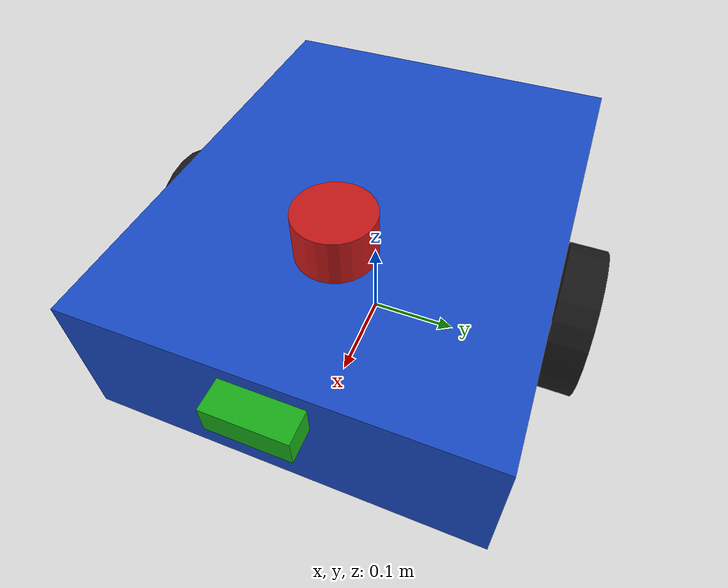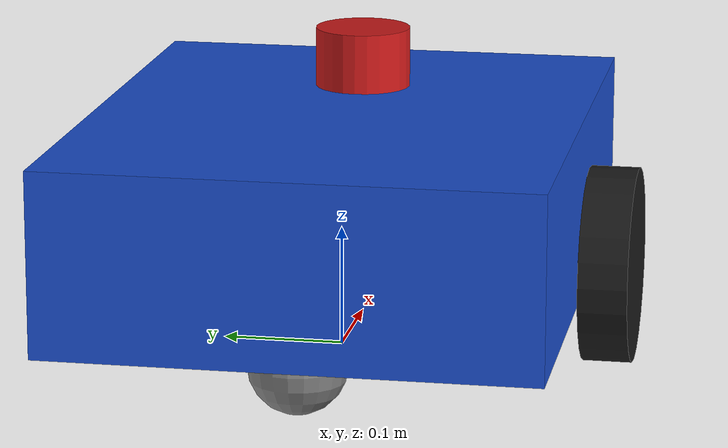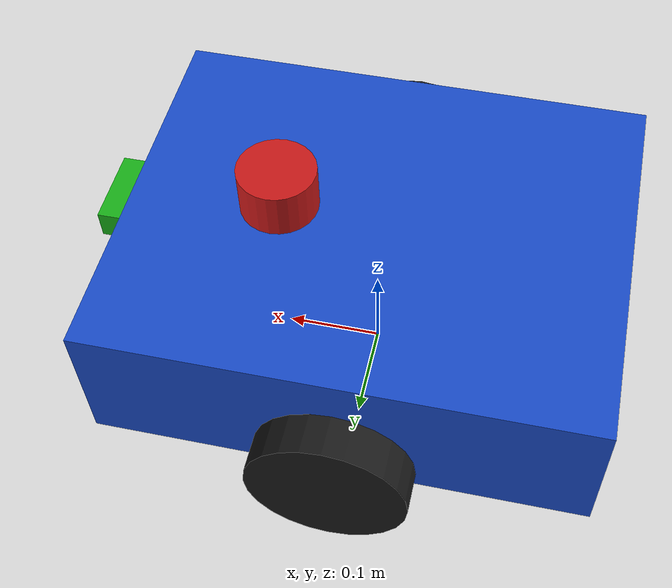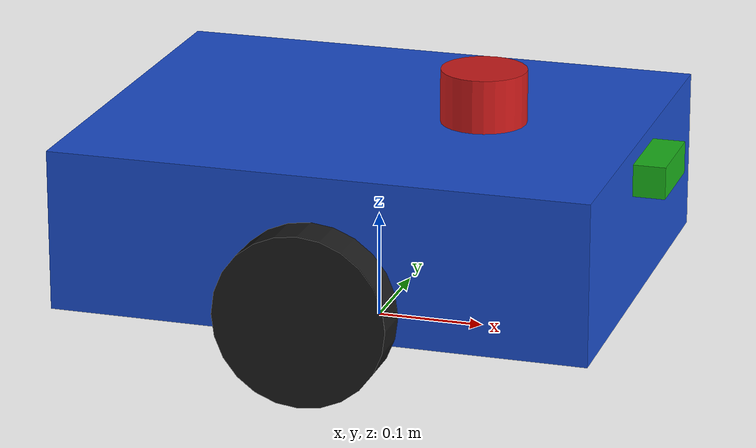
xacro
<?xml version="1.0"?>
<robot name="amr" xmlns:xacro="http://www.ros.org/wiki/xacro">

  <!-- ===================== Parameters ===================== -->
  <xacro:property name="base_length" value="0.50"/>
  <xacro:property name="base_width"  value="0.40"/>
  <xacro:property name="base_height" value="0.15"/>
  <xacro:property name="base_mass"   value="15.0"/>

  <xacro:property name="wheel_radius" value="0.08"/>
  <xacro:property name="wheel_width"  value="0.04"/>
  <xacro:property name="wheel_mass"   value="1.0"/>
  <xacro:property name="wheel_separation" value="${base_width + wheel_width + 0.01}"/>
  <xacro:property name="wheel_x_offset" value="0.0"/>

  <xacro:property name="caster_radius" value="0.04"/>
  <!-- base_link origin sits at wheel-axle height; casters must touch the ground too -->
  <xacro:property name="caster_z" value="${caster_radius - wheel_radius}"/>

  <!-- ===================== Inertia macros ===================== -->
  <xacro:macro name="box_inertia" params="m x y z">
    <inertial>
      <mass value="${m}"/>
      <inertia ixx="${m*(y*y+z*z)/12}" ixy="0" ixz="0"
               iyy="${m*(x*x+z*z)/12}" iyz="0"
               izz="${m*(x*x+y*y)/12}"/>
    </inertial>
  </xacro:macro>

  <xacro:macro name="cylinder_inertia" params="m r h">
    <inertial>
      <mass value="${m}"/>
      <inertia ixx="${m*(3*r*r+h*h)/12}" ixy="0" ixz="0"
               iyy="${m*(3*r*r+h*h)/12}" iyz="0"
               izz="${m*r*r/2}"/>
    </inertial>
  </xacro:macro>

  <xacro:macro name="sphere_inertia" params="m r">
    <inertial>
      <mass value="${m}"/>
      <inertia ixx="${2*m*r*r/5}" ixy="0" ixz="0"
               iyy="${2*m*r*r/5}" iyz="0"
               izz="${2*m*r*r/5}"/>
    </inertial>
  </xacro:macro>

  <!-- ===================== Links ===================== -->
  <link name="base_footprint"/>

  <link name="base_link">
    <visual>
      <origin xyz="0 0 ${base_height/2 - 0.03}"/>
      <geometry><box size="${base_length} ${base_width} ${base_height}"/></geometry>
      <material name="blue"><color rgba="0.1 0.3 0.8 1"/></material>
    </visual>
    <collision>
      <origin xyz="0 0 ${base_height/2 - 0.03}"/>
      <geometry><box size="${base_length} ${base_width} ${base_height}"/></geometry>
    </collision>
    <xacro:box_inertia m="${base_mass}" x="${base_length}" y="${base_width}" z="${base_height}"/>
  </link>

  <joint name="base_footprint_joint" type="fixed">
    <parent link="base_footprint"/>
    <child link="base_link"/>
    <origin xyz="0 0 ${wheel_radius}"/>
  </joint>

  <!-- Drive wheels -->
  <xacro:macro name="wheel" params="prefix y_reflect">
    <link name="${prefix}_wheel_link">
      <visual>
        <geometry><cylinder radius="${wheel_radius}" length="${wheel_width}"/></geometry>
        <material name="black"><color rgba="0.1 0.1 0.1 1"/></material>
      </visual>
      <collision>
        <geometry><cylinder radius="${wheel_radius}" length="${wheel_width}"/></geometry>
      </collision>
      <xacro:cylinder_inertia m="${wheel_mass}" r="${wheel_radius}" h="${wheel_width}"/>
    </link>

    <joint name="${prefix}_wheel_joint" type="continuous">
      <parent link="base_link"/>
      <child link="${prefix}_wheel_link"/>
      <!-- Rotate so the cylinder axis (z) points along +y; positive spin drives forward -->
      <origin xyz="${wheel_x_offset} ${y_reflect*wheel_separation/2} 0" rpy="${-pi/2} 0 0"/>
      <axis xyz="0 0 1"/>
    </joint>

    <gazebo reference="${prefix}_wheel_link">
      <mu1>1.0</mu1>
      <mu2>1.0</mu2>
    </gazebo>
  </xacro:macro>

  <xacro:wheel prefix="left"  y_reflect="1"/>
  <xacro:wheel prefix="right" y_reflect="-1"/>

  <!-- Front / rear frictionless casters -->
  <xacro:macro name="caster" params="prefix x">
    <link name="${prefix}_caster_link">
      <visual>
        <geometry><sphere radius="${caster_radius}"/></geometry>
        <material name="grey"><color rgba="0.5 0.5 0.5 1"/></material>
      </visual>
      <collision>
        <geometry><sphere radius="${caster_radius}"/></geometry>
      </collision>
      <xacro:sphere_inertia m="0.2" r="${caster_radius}"/>
    </link>

    <joint name="${prefix}_caster_joint" type="fixed">
      <parent link="base_link"/>
      <child link="${prefix}_caster_link"/>
      <origin xyz="${x} 0 ${caster_z}"/>
    </joint>

    <gazebo reference="${prefix}_caster_link">
      <mu1>0.0</mu1>
      <mu2>0.0</mu2>
    </gazebo>
  </xacro:macro>

  <xacro:caster prefix="front" x="${base_length/2 - caster_radius - 0.02}"/>
  <xacro:caster prefix="rear"  x="${-(base_length/2 - caster_radius - 0.02)}"/>

  <!-- ===================== Sensors ===================== -->
  <!-- 2D LiDAR -->
  <link name="lidar_link">
    <visual>
      <geometry><cylinder radius="0.04" length="0.05"/></geometry>
      <material name="red"><color rgba="0.8 0.1 0.1 1"/></material>
    </visual>
    <collision>
      <geometry><cylinder radius="0.04" length="0.05"/></geometry>
    </collision>
    <xacro:cylinder_inertia m="0.1" r="0.04" h="0.05"/>
  </link>

  <joint name="lidar_joint" type="fixed">
    <parent link="base_link"/>
    <child link="lidar_link"/>
    <origin xyz="0.1 0 ${base_height - 0.03 + 0.025}"/>
  </joint>

  <!-- RGB camera -->
  <link name="camera_link">
    <visual>
      <geometry><box size="0.03 0.08 0.03"/></geometry>
      <material name="green"><color rgba="0.1 0.7 0.1 1"/></material>
    </visual>
    <collision>
      <geometry><box size="0.03 0.08 0.03"/></geometry>
    </collision>
    <xacro:box_inertia m="0.05" x="0.03" y="0.08" z="0.03"/>
  </link>

  <joint name="camera_joint" type="fixed">
    <parent link="base_link"/>
    <child link="camera_link"/>
    <origin xyz="${base_length/2 + 0.015} 0 ${base_height - 0.06}"/>
  </joint>

  <!-- ROS optical frame convention: z forward, x right, y down -->
  <link name="camera_optical_link"/>
  <joint name="camera_optical_joint" type="fixed">
    <parent link="camera_link"/>
    <child link="camera_optical_link"/>
    <origin xyz="0 0 0" rpy="${-pi/2} 0 ${-pi/2}"/>
  </joint>

  <!-- IMU -->
  <link name="imu_link"/>
  <joint name="imu_joint" type="fixed">
    <parent link="base_link"/>
    <child link="imu_link"/>
    <origin xyz="0 0 0.02"/>
  </joint>

  <!-- ===================== Gazebo Harmonic plugins ===================== -->
  <gazebo>
    <plugin filename="gz-sim-diff-drive-system" name="gz::sim::systems::DiffDrive">
      <left_joint>left_wheel_joint</left_joint>
      <right_joint>right_wheel_joint</right_joint>
      <wheel_separation>${wheel_separation}</wheel_separation>
      <wheel_radius>${wheel_radius}</wheel_radius>
      <max_linear_acceleration>1.0</max_linear_acceleration>
      <max_angular_acceleration>2.0</max_angular_acceleration>
      <topic>cmd_vel</topic>
      <odom_topic>odom</odom_topic>
      <tf_topic>tf</tf_topic>
      <frame_id>odom</frame_id>
      <child_frame_id>base_footprint</child_frame_id>
      <odom_publish_frequency>30</odom_publish_frequency>
    </plugin>

    <plugin filename="gz-sim-joint-state-publisher-system" name="gz::sim::systems::JointStatePublisher">
      <topic>joint_states</topic>
      <joint_name>left_wheel_joint</joint_name>
      <joint_name>right_wheel_joint</joint_name>
    </plugin>
  </gazebo>

  <gazebo reference="lidar_link">
    <sensor name="lidar" type="gpu_lidar">
      <topic>scan</topic>
      <gz_frame_id>lidar_link</gz_frame_id>
      <update_rate>10</update_rate>
      <always_on>true</always_on>
      <visualize>true</visualize>
      <lidar>
        <scan>
          <horizontal>
            <samples>360</samples>
            <resolution>1</resolution>
            <min_angle>-3.14159</min_angle>
            <max_angle>3.14159</max_angle>
          </horizontal>
          <vertical>
            <samples>1</samples>
            <resolution>1</resolution>
            <min_angle>0</min_angle>
            <max_angle>0</max_angle>
          </vertical>
        </scan>
        <range>
          <min>0.12</min>
          <max>12.0</max>
          <resolution>0.01</resolution>
        </range>
        <noise>
          <type>gaussian</type>
          <mean>0.0</mean>
          <stddev>0.01</stddev>
        </noise>
      </lidar>
    </sensor>
  </gazebo>

  <gazebo reference="camera_link">
    <sensor name="camera" type="camera">
      <topic>camera/image</topic>
      <gz_frame_id>camera_optical_link</gz_frame_id>
      <update_rate>30</update_rate>
      <always_on>true</always_on>
      <visualize>true</visualize>
      <camera>
        <camera_info_topic>camera/camera_info</camera_info_topic>
        <horizontal_fov>1.3963</horizontal_fov>
        <image>
          <width>640</width>
          <height>480</height>
          <format>R8G8B8</format>
        </image>
        <clip>
          <near>0.05</near>
          <far>50.0</far>
        </clip>
        <noise>
          <type>gaussian</type>
          <mean>0.0</mean>
          <stddev>0.007</stddev>
        </noise>
      </camera>
    </sensor>
  </gazebo>

  <gazebo reference="imu_link">
    <sensor name="imu" type="imu">
      <topic>imu</topic>
      <gz_frame_id>imu_link</gz_frame_id>
      <update_rate>100</update_rate>
      <always_on>true</always_on>
    </sensor>
  </gazebo>

</robot>
